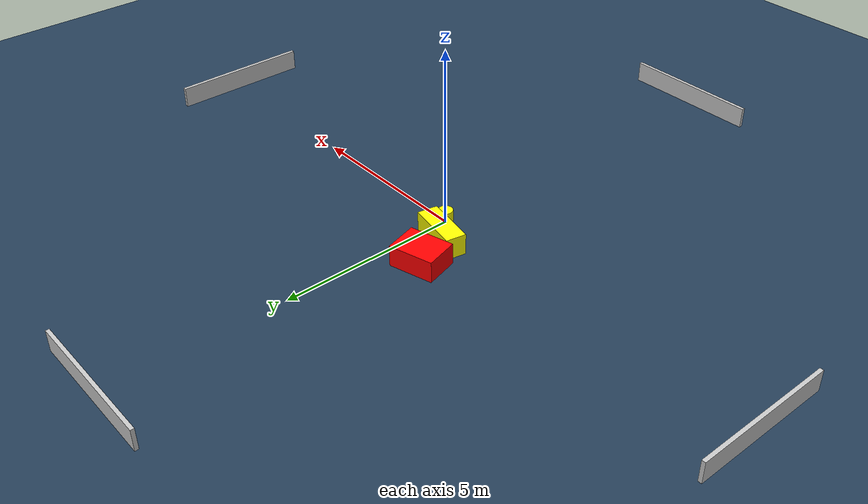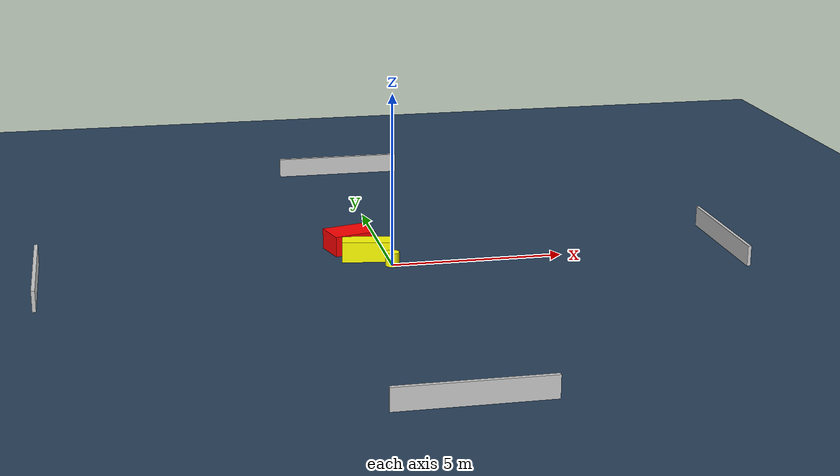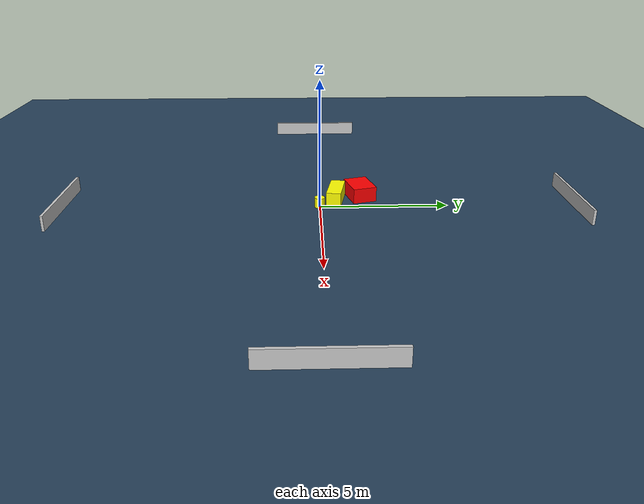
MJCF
<?xml version="1.0" ?>
<mujoco model="generated_environment">
  <option timestep="0.01" integrator="RK4" cone="elliptic"/>
  <default>
    <geom density="1"/>
  </default>
  <asset>
    <texture builtin="gradient" height="3072" name="skybox" rgb1="0.3 0.5 0.7" rgb2="0 0 0" type="skybox" width="512"/>
    <texture builtin="checker" height="300" name="groundplane" rgb1="0.2 0.3 0.4" rgb2="0.1 0.2 0.3" type="2d" width="300"/>
    <material name="groundplane" reflectance="0.2" texrepeat="5 5" texture="groundplane"/>
  </asset>
  <worldbody>
    <light dir="0 0 -1" directional="true" pos="0 0 1.5"/>
    <geom condim="3" friction="0.5 0.005 0.001" material="groundplane" name="floor" pos="0 0 0" size="0 0 0.05" type="plane"/>
    <body name="walls">
      <geom name="wall_1" condim="4" pos="-10.0 0.0 0.3" rgba="0.800000011920929 0.800000011920929 0.800000011920929 1.0" size="0.05 2.0 0.3" type="box"/>
      <geom name="wall_2" condim="4" pos="10.0 0.0 0.3" rgba="0.800000011920929 0.800000011920929 0.800000011920929 1.0" size="0.05 2.0 0.3" type="box"/>
      <geom name="wall_3" condim="4" pos="0.0 -10.0 0.3" rgba="0.800000011920929 0.800000011920929 0.800000011920929 1.0" size="2.0 0.05 0.3" type="box"/>
      <geom name="wall_4" condim="4" pos="0.0 10.0 0.3" rgba="0.800000011920929 0.800000011920929 0.800000011920929 1.0" size="2.0 0.05 0.3" type="box"/>
    </body>
    <body name="robot">
      <joint name="joint_x" type="slide" pos="0 0 0" axis="1 0 0"/>
      <joint name="joint_y" type="slide" pos="0 0 0" axis="0 1 0"/>
      <geom name="robot" type="cylinder" pos="0.0 0.0 0.2" size="0.2 0.2 0.0" mass="5.0" friction="1.0 0.005 0.0001" condim="4" rgba="1.0 1.0 0.0 1.0"/>
    </body>
    <body name="obstacle_1_movable">
      <geom name="obstacle_1_movable" condim="4" pos="-0.6049346571497971 0.6583625681634133 0.3" euler="0 0 79.67605929466285" friction="0.0 0.005 0.001" rgba="1.0 1.0 0.0 1.0" size="0.2844441680612606 0.7275847495309393 0.3" type="box" mass="0.1"/>
      <joint type="free"/>
    </body>
    <body name="obstacle_2_static">
      <geom name="obstacle_2_static" condim="4" pos="-0.9837680229290026 1.646016589804937 0.3" euler="0 0 105.33360527287695" friction="0.0 0.005 0.001" rgba="1.0 0.0 0.0 1.0" size="0.474982898300938 0.6290852872384898 0.3" type="box"/>
    </body>
  </worldbody>
  <actuator>
    <motor name="actuator_x" joint="joint_x" gear="1" ctrlrange="-1 1"/>
    <motor name="actuator_y" joint="joint_y" gear="1" ctrlrange="-1 1"/>
  </actuator>
</mujoco>
